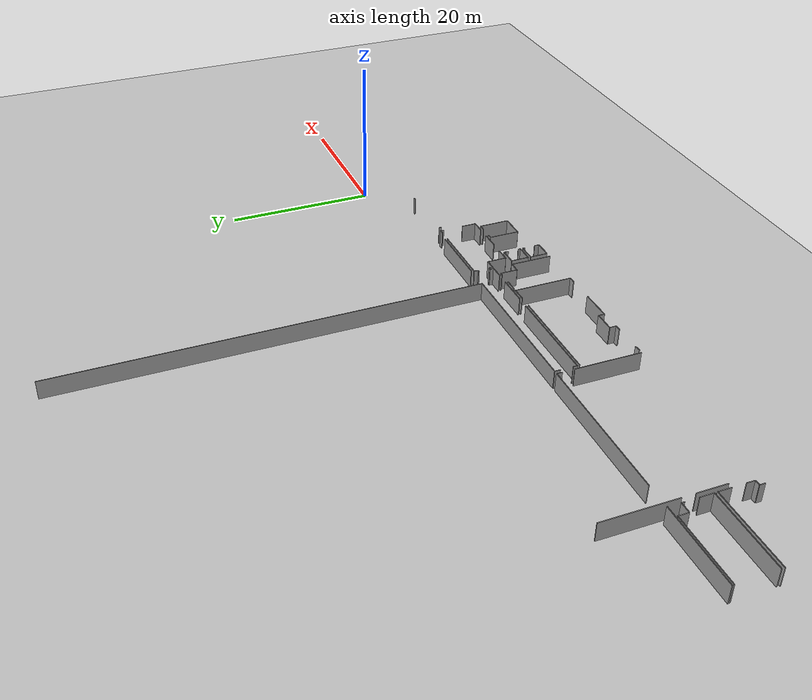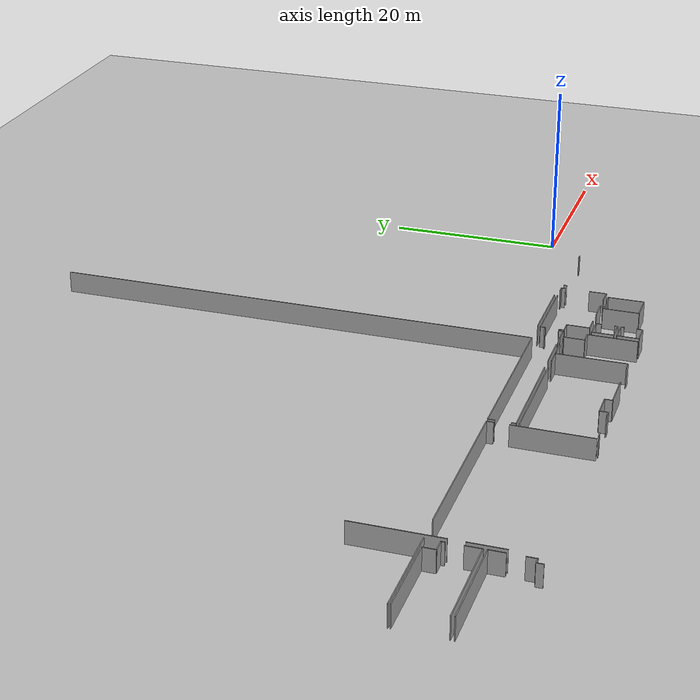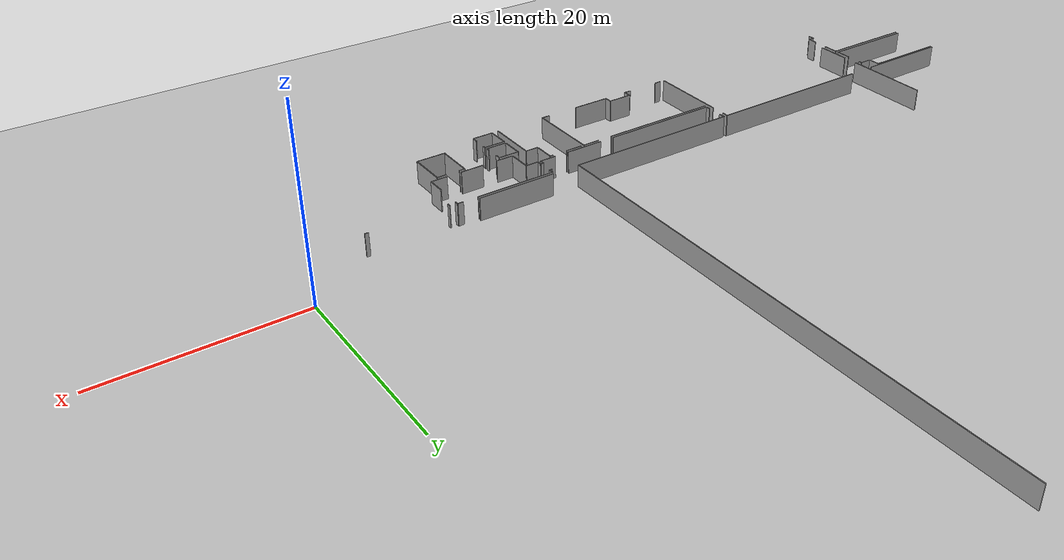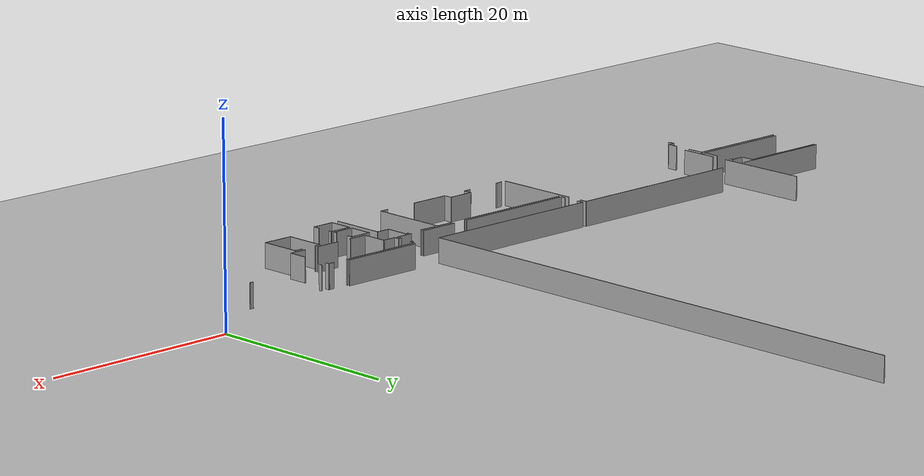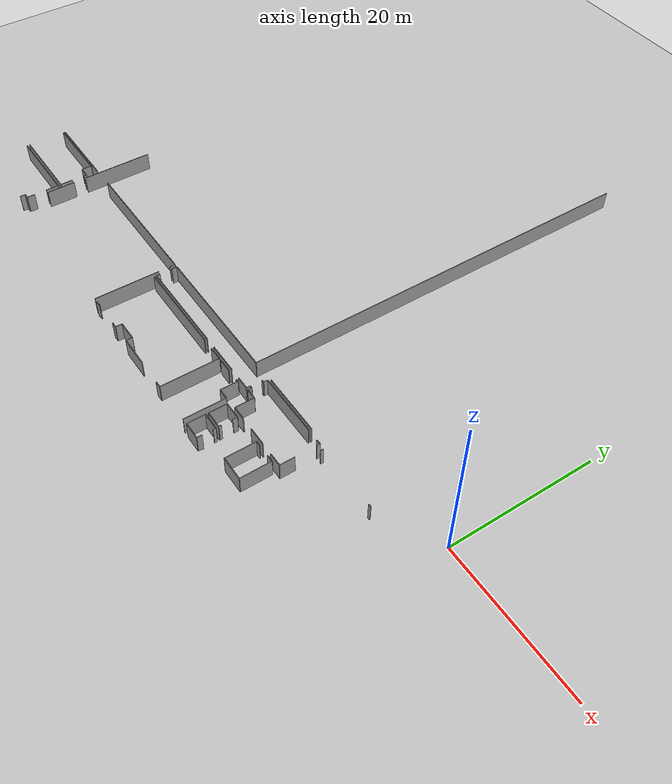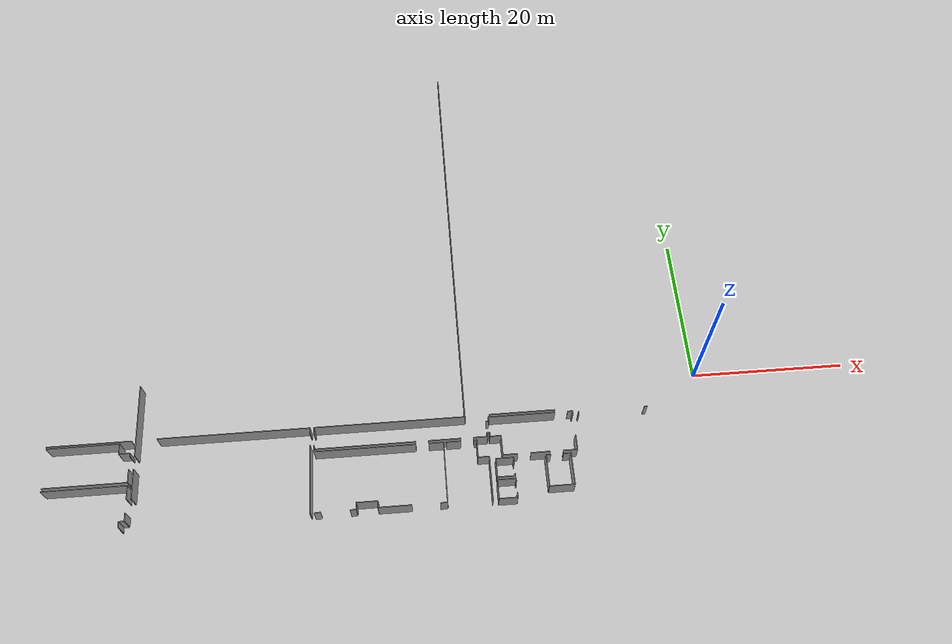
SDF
<sdf version="1.6">
 <world name="default">
  <model name="ground_plane">
   <static>1</static>
   <link name="link">
    <collision name="collision">
     <geometry><plane><normal>0 0 1</normal><size>100 100</size></plane></geometry>
     <surface><friction><ode><mu>100</mu><mu2>50</mu2></ode></friction></surface>
    </collision>
    <visual name="visual">
     <cast_shadows>0</cast_shadows>
     <geometry><plane><normal>0 0 1</normal><size>100 100</size></plane></geometry>
     <material>
      <script><uri>file://media/materials/scripts/gazebo.material</uri><name>Gazebo/Grey</name></script>
     </material>
    </visual>
   </link>
  </model>
  <model name="0510045905_A_40_1_103">
   <static>1</static>
   <link name="Wall_4">
    <collision name="Wall_4_Collision">
     <geometry><box><size>3.87378412847 0.1 2.5</size></box></geometry>
     <pose>1.93689206424 0 1.25 0 0 0</pose>
    </collision>
    <visual name="Wall_4_Visual">
     <pose>1.93689206424 0 1.25 0 0 0</pose>
     <geometry><box><size>3.87378412847 0.1 2.5</size></box></geometry>
     <material>
      <script><uri>file://media/materials/scripts/gazebo.material</uri><name>Gazebo/Grey</name></script>
      <ambient>1 1 1 1</ambient>
     </material>
    </visual>
    <pose>11.2497858543 -74.5343680006 0 0 0 1.57079632679</pose>
   </link>
   <link name="Wall_5">
    <collision name="Wall_5_Collision">
     <geometry><box><size>9.61199977158 0.1 2.5</size></box></geometry>
     <pose>4.80599988579 0 1.25 0 0 0</pose>
    </collision>
    <visual name="Wall_5_Visual">
     <pose>4.80599988579 0 1.25 0 0 0</pose>
     <geometry><box><size>9.61199977158 0.1 2.5</size></box></geometry>
     <material>
      <script><uri>file://media/materials/scripts/gazebo.material</uri><name>Gazebo/Grey</name></script>
      <ambient>1 1 1 1</ambient>
     </material>
    </visual>
    <pose>11.2497858543 -68.9687379047 0 0 0 1.57079632679</pose>
   </link>
   <link name="Wall_16">
    <collision name="Wall_16_Collision">
     <geometry><box><size>19.350139274 0.1 2.5</size></box></geometry>
     <pose>9.675069637 0 1.25 0 0 0</pose>
    </collision>
    <visual name="Wall_16_Visual">
     <pose>9.675069637 0 1.25 0 0 0</pose>
     <geometry><box><size>19.350139274 0.1 2.5</size></box></geometry>
     <material>
      <script><uri>file://media/materials/scripts/gazebo.material</uri><name>Gazebo/Grey</name></script>
      <ambient>1 1 1 1</ambient>
     </material>
    </visual>
    <pose>13.881207845 -66.8675088672 0 0 0 0.0</pose>
   </link>
   <link name="Wall_17">
    <collision name="Wall_17_Collision">
     <geometry><box><size>0.743894469014 0.1 2.5</size></box></geometry>
     <pose>0.371947234507 0 1.25 0 0 0</pose>
    </collision>
    <visual name="Wall_17_Visual">
     <pose>0.371947234507 0 1.25 0 0 0</pose>
     <geometry><box><size>0.743894469014 0.1 2.5</size></box></geometry>
     <material>
      <script><uri>file://media/materials/scripts/gazebo.material</uri><name>Gazebo/Grey</name></script>
      <ambient>1 1 1 1</ambient>
     </material>
    </visual>
    <pose>33.231347119 -66.8675088672 0 0 0 -1.57079632679</pose>
   </link>
   <link name="Wall_18">
    <collision name="Wall_18_Collision">
     <geometry><box><size>8.82354534993 0.1 2.5</size></box></geometry>
     <pose>4.41177267496 0 1.25 0 0 0</pose>
    </collision>
    <visual name="Wall_18_Visual">
     <pose>4.41177267496 0 1.25 0 0 0</pose>
     <geometry><box><size>8.82354534993 0.1 2.5</size></box></geometry>
     <material>
      <script><uri>file://media/materials/scripts/gazebo.material</uri><name>Gazebo/Grey</name></script>
      <ambient>1 1 1 1</ambient>
     </material>
    </visual>
    <pose>33.231347119 -69.2070582413 0 0 0 -1.57577255496</pose>
   </link>
   <link name="Wall_44">
    <collision name="Wall_44_Collision">
     <geometry><box><size>10.7010653351 0.1 2.5</size></box></geometry>
     <pose>5.35053266753 0 1.25 0 0 0</pose>
    </collision>
    <visual name="Wall_44_Visual">
     <pose>5.35053266753 0 1.25 0 0 0</pose>
     <geometry><box><size>10.7010653351 0.1 2.5</size></box></geometry>
     <material>
      <script><uri>file://media/materials/scripts/gazebo.material</uri><name>Gazebo/Grey</name></script>
      <ambient>1 1 1 1</ambient>
     </material>
    </visual>
    <pose>10.7312678058 -66.9271524019 0 0 0 3.14159265359</pose>
   </link>
   <link name="Wall_49">
    <collision name="Wall_49_Collision">
     <geometry><box><size>10.6028438545 0.1 2.5</size></box></geometry>
     <pose>5.30142192725 0 1.25 0 0 0</pose>
    </collision>
    <visual name="Wall_49_Visual">
     <pose>5.30142192725 0 1.25 0 0 0</pose>
     <geometry><box><size>10.6028438545 0.1 2.5</size></box></geometry>
     <material>
      <script><uri>file://media/materials/scripts/gazebo.material</uri><name>Gazebo/Grey</name></script>
      <ambient>1 1 1 1</ambient>
     </material>
    </visual>
    <pose>10.6515738914 -72.3854241353 0 0 0 3.14159265359</pose>
   </link>
   <link name="Wall_50">
    <collision name="Wall_50_Collision">
     <geometry><box><size>9.1950026332 0.1 2.5</size></box></geometry>
     <pose>4.5975013166 0 1.25 0 0 0</pose>
    </collision>
    <visual name="Wall_50_Visual">
     <pose>4.5975013166 0 1.25 0 0 0</pose>
     <geometry><box><size>9.1950026332 0.1 2.5</size></box></geometry>
     <material>
      <script><uri>file://media/materials/scripts/gazebo.material</uri><name>Gazebo/Grey</name></script>
      <ambient>1 1 1 1</ambient>
     </material>
    </visual>
    <pose>0.0487300368648 -67.1741020158 0 0 0 0.0</pose>
   </link>
   <link name="Wall_51">
    <collision name="Wall_51_Collision">
     <geometry><box><size>1.36063399808 0.1 2.5</size></box></geometry>
     <pose>0.680316999042 0 1.25 0 0 0</pose>
    </collision>
    <visual name="Wall_51_Visual">
     <pose>0.680316999042 0 1.25 0 0 0</pose>
     <geometry><box><size>1.36063399808 0.1 2.5</size></box></geometry>
     <material>
      <script><uri>file://media/materials/scripts/gazebo.material</uri><name>Gazebo/Grey</name></script>
      <ambient>1 1 1 1</ambient>
     </material>
    </visual>
    <pose>9.24373267006 -67.1741020158 0 0 0 -1.57079632679</pose>
   </link>
   <link name="Wall_52">
    <collision name="Wall_52_Collision">
     <geometry><box><size>1.40454179172 0.1 2.5</size></box></geometry>
     <pose>0.702270895859 0 1.25 0 0 0</pose>
    </collision>
    <visual name="Wall_52_Visual">
     <pose>0.702270895859 0 1.25 0 0 0</pose>
     <geometry><box><size>1.40454179172 0.1 2.5</size></box></geometry>
     <material>
      <script><uri>file://media/materials/scripts/gazebo.material</uri><name>Gazebo/Grey</name></script>
      <ambient>1 1 1 1</ambient>
     </material>
    </visual>
    <pose>9.24373267006 -68.5347360139 0 0 0 0.0</pose>
   </link>
   <link name="Wall_53">
    <collision name="Wall_53_Collision">
     <geometry><box><size>0.394916340425 0.1 2.5</size></box></geometry>
     <pose>0.197458170212 0 1.25 0 0 0</pose>
    </collision>
    <visual name="Wall_53_Visual">
     <pose>0.197458170212 0 1.25 0 0 0</pose>
     <geometry><box><size>0.394916340425 0.1 2.5</size></box></geometry>
     <material>
      <script><uri>file://media/materials/scripts/gazebo.material</uri><name>Gazebo/Grey</name></script>
      <ambient>1 1 1 1</ambient>
     </material>
    </visual>
    <pose>10.6482744618 -68.5347360139 0 0 0 -1.57079632679</pose>
   </link>
   <link name="Wall_54">
    <collision name="Wall_54_Collision">
     <geometry><box><size>1.72484341891 0.1 2.5</size></box></geometry>
     <pose>0.862421709456 0 1.25 0 0 0</pose>
    </collision>
    <visual name="Wall_54_Visual">
     <pose>0.862421709456 0 1.25 0 0 0</pose>
     <geometry><box><size>1.72484341891 0.1 2.5</size></box></geometry>
     <material>
      <script><uri>file://media/materials/scripts/gazebo.material</uri><name>Gazebo/Grey</name></script>
      <ambient>1 1 1 1</ambient>
     </material>
    </visual>
    <pose>10.6482744618 -70.6605838721 0 0 0 -1.56888343919</pose>
   </link>
   <link name="Wall_56">
    <collision name="Wall_56_Collision">
     <geometry><box><size>10.6373609639 0.1 2.5</size></box></geometry>
     <pose>5.31868048197 0 1.25 0 0 0</pose>
    </collision>
    <visual name="Wall_56_Visual">
     <pose>5.31868048197 0 1.25 0 0 0</pose>
     <geometry><box><size>10.6373609639 0.1 2.5</size></box></geometry>
     <material>
      <script><uri>file://media/materials/scripts/gazebo.material</uri><name>Gazebo/Grey</name></script>
      <ambient>1 1 1 1</ambient>
     </material>
    </visual>
    <pose>0.0256340298091 -72.780594278 0 0 0 0.0</pose>
   </link>
   <link name="Wall_57">
    <collision name="Wall_57_Collision">
     <geometry><box><size>1.72864729732 0.1 2.5</size></box></geometry>
     <pose>0.864323648662 0 1.25 0 0 0</pose>
    </collision>
    <visual name="Wall_57_Visual">
     <pose>0.864323648662 0 1.25 0 0 0</pose>
     <geometry><box><size>1.72864729732 0.1 2.5</size></box></geometry>
     <material>
      <script><uri>file://media/materials/scripts/gazebo.material</uri><name>Gazebo/Grey</name></script>
      <ambient>1 1 1 1</ambient>
     </material>
    </visual>
    <pose>10.6629949938 -72.780594278 0 0 0 -1.57079632679</pose>
   </link>
   <link name="Wall_58">
    <collision name="Wall_58_Collision">
     <geometry><box><size>1.07383742695 0.1 2.5</size></box></geometry>
     <pose>0.536918713476 0 1.25 0 0 0</pose>
    </collision>
    <visual name="Wall_58_Visual">
     <pose>0.536918713476 0 1.25 0 0 0</pose>
     <geometry><box><size>1.07383742695 0.1 2.5</size></box></geometry>
     <material>
      <script><uri>file://media/materials/scripts/gazebo.material</uri><name>Gazebo/Grey</name></script>
      <ambient>1 1 1 1</ambient>
     </material>
    </visual>
    <pose>10.6629949938 -76.2310362112 0 0 0 -1.57079632679</pose>
   </link>
   <link name="Wall_59">
    <collision name="Wall_59_Collision">
     <geometry><box><size>0.693387816222 0.1 2.5</size></box></geometry>
     <pose>0.346693908111 0 1.25 0 0 0</pose>
    </collision>
    <visual name="Wall_59_Visual">
     <pose>0.346693908111 0 1.25 0 0 0</pose>
     <geometry><box><size>0.693387816222 0.1 2.5</size></box></geometry>
     <material>
      <script><uri>file://media/materials/scripts/gazebo.material</uri><name>Gazebo/Grey</name></script>
      <ambient>1 1 1 1</ambient>
     </material>
    </visual>
    <pose>10.6629949938 -77.3048736382 0 0 0 3.14159265359</pose>
   </link>
   <link name="Wall_60">
    <collision name="Wall_60_Collision">
     <geometry><box><size>0.72562070519 0.1 2.5</size></box></geometry>
     <pose>0.362810352595 0 1.25 0 0 0</pose>
    </collision>
    <visual name="Wall_60_Visual">
     <pose>0.362810352595 0 1.25 0 0 0</pose>
     <geometry><box><size>0.72562070519 0.1 2.5</size></box></geometry>
     <material>
      <script><uri>file://media/materials/scripts/gazebo.material</uri><name>Gazebo/Grey</name></script>
      <ambient>1 1 1 1</ambient>
     </material>
    </visual>
    <pose>9.96960717753 -77.3048736382 0 0 0 -1.57079632679</pose>
   </link>
   <link name="Wall_61">
    <collision name="Wall_61_Collision">
     <geometry><box><size>0.524609303122 0.1 2.5</size></box></geometry>
     <pose>0.262304651561 0 1.25 0 0 0</pose>
    </collision>
    <visual name="Wall_61_Visual">
     <pose>0.262304651561 0 1.25 0 0 0</pose>
     <geometry><box><size>0.524609303122 0.1 2.5</size></box></geometry>
     <material>
      <script><uri>file://media/materials/scripts/gazebo.material</uri><name>Gazebo/Grey</name></script>
      <ambient>1 1 1 1</ambient>
     </material>
    </visual>
    <pose>33.6985971079 -69.7935952996 0 0 0 1.57079632679</pose>
   </link>
   <link name="Wall_62">
    <collision name="Wall_62_Collision">
     <geometry><box><size>0.734249982551 0.1 2.5</size></box></geometry>
     <pose>0.367124991276 0 1.25 0 0 0</pose>
    </collision>
    <visual name="Wall_62_Visual">
     <pose>0.367124991276 0 1.25 0 0 0</pose>
     <geometry><box><size>0.734249982551 0.1 2.5</size></box></geometry>
     <material>
      <script><uri>file://media/materials/scripts/gazebo.material</uri><name>Gazebo/Grey</name></script>
      <ambient>1 1 1 1</ambient>
     </material>
    </visual>
    <pose>33.6985971079 -67.6004898384 0 0 0 1.57079632679</pose>
   </link>
   <link name="Wall_63">
    <collision name="Wall_63_Collision">
     <geometry><box><size>19.3156221646 0.1 2.5</size></box></geometry>
     <pose>9.65781108228 0 1.25 0 0 0</pose>
    </collision>
    <visual name="Wall_63_Visual">
     <pose>9.65781108228 0 1.25 0 0 0</pose>
     <geometry><box><size>19.3156221646 0.1 2.5</size></box></geometry>
     <material>
      <script><uri>file://media/materials/scripts/gazebo.material</uri><name>Gazebo/Grey</name></script>
      <ambient>1 1 1 1</ambient>
     </material>
    </visual>
    <pose>33.6985971079 -66.8662398558 0 0 0 0.0</pose>
   </link>
   <link name="Wall_64">
    <collision name="Wall_64_Collision">
     <geometry><box><size>55.6601079929 0.1 2.5</size></box></geometry>
     <pose>27.8300539964 0 1.25 0 0 0</pose>
    </collision>
    <visual name="Wall_64_Visual">
     <pose>27.8300539964 0 1.25 0 0 0</pose>
     <geometry><box><size>55.6601079929 0.1 2.5</size></box></geometry>
     <material>
      <script><uri>file://media/materials/scripts/gazebo.material</uri><name>Gazebo/Grey</name></script>
      <ambient>1 1 1 1</ambient>
     </material>
    </visual>
    <pose>53.0142192725 -66.8662398558 0 0 0 1.57079632679</pose>
   </link>
   <link name="Wall_72">
    <collision name="Wall_72_Collision">
     <geometry><box><size>0.333749992069 0.1 2.5</size></box></geometry>
     <pose>0.166874996034 0 1.25 0 0 0</pose>
    </collision>
    <visual name="Wall_72_Visual">
     <pose>0.166874996034 0 1.25 0 0 0</pose>
     <geometry><box><size>0.333749992069 0.1 2.5</size></box></geometry>
     <material>
      <script><uri>file://media/materials/scripts/gazebo.material</uri><name>Gazebo/Grey</name></script>
      <ambient>1 1 1 1</ambient>
     </material>
    </visual>
    <pose>55.650971111 -67.683990787 0 0 0 0.0</pose>
   </link>
   <link name="Wall_73">
    <collision name="Wall_73_Collision">
     <geometry><box><size>0.551512344308 0.1 2.5</size></box></geometry>
     <pose>0.275756172154 0 1.25 0 0 0</pose>
    </collision>
    <visual name="Wall_73_Visual">
     <pose>0.275756172154 0 1.25 0 0 0</pose>
     <geometry><box><size>0.551512344308 0.1 2.5</size></box></geometry>
     <material>
      <script><uri>file://media/materials/scripts/gazebo.material</uri><name>Gazebo/Grey</name></script>
      <ambient>1 1 1 1</ambient>
     </material>
    </visual>
    <pose>55.984721103 -67.683990787 0 0 0 1.57079632679</pose>
   </link>
   <link name="Wall_74">
    <collision name="Wall_74_Collision">
     <geometry><box><size>8.61963287501 0.1 2.5</size></box></geometry>
     <pose>4.3098164375 0 1.25 0 0 0</pose>
    </collision>
    <visual name="Wall_74_Visual">
     <pose>4.3098164375 0 1.25 0 0 0</pose>
     <geometry><box><size>8.61963287501 0.1 2.5</size></box></geometry>
     <material>
      <script><uri>file://media/materials/scripts/gazebo.material</uri><name>Gazebo/Grey</name></script>
      <ambient>1 1 1 1</ambient>
     </material>
    </visual>
    <pose>55.984721103 -67.1324784427 0 0 0 0.0</pose>
   </link>
   <link name="Wall_75">
    <collision name="Wall_75_Collision">
     <geometry><box><size>0.618262342722 0.1 2.5</size></box></geometry>
     <pose>0.309131171361 0 1.25 0 0 0</pose>
    </collision>
    <visual name="Wall_75_Visual">
     <pose>0.309131171361 0 1.25 0 0 0</pose>
     <geometry><box><size>0.618262342722 0.1 2.5</size></box></geometry>
     <material>
      <script><uri>file://media/materials/scripts/gazebo.material</uri><name>Gazebo/Grey</name></script>
      <ambient>1 1 1 1</ambient>
     </material>
    </visual>
    <pose>66.2347797948 -67.1324784427 0 0 0 0.0</pose>
   </link>
   <link name="Wall_76">
    <collision name="Wall_76_Collision">
     <geometry><box><size>0.461920141114 0.1 2.5</size></box></geometry>
     <pose>0.230960070557 0 1.25 0 0 0</pose>
    </collision>
    <visual name="Wall_76_Visual">
     <pose>0.230960070557 0 1.25 0 0 0</pose>
     <geometry><box><size>0.461920141114 0.1 2.5</size></box></geometry>
     <material>
      <script><uri>file://media/materials/scripts/gazebo.material</uri><name>Gazebo/Grey</name></script>
      <ambient>1 1 1 1</ambient>
     </material>
    </visual>
    <pose>66.8530421375 -67.1324784427 0 0 0 -1.57079632679</pose>
   </link>
   <link name="Wall_77">
    <collision name="Wall_77_Collision">
     <geometry><box><size>1.9748355044 0.1 2.5</size></box></geometry>
     <pose>0.9874177522 0 1.25 0 0 0</pose>
    </collision>
    <visual name="Wall_77_Visual">
     <pose>0.9874177522 0 1.25 0 0 0</pose>
     <geometry><box><size>1.9748355044 0.1 2.5</size></box></geometry>
     <material>
      <script><uri>file://media/materials/scripts/gazebo.material</uri><name>Gazebo/Grey</name></script>
      <ambient>1 1 1 1</ambient>
     </material>
    </visual>
    <pose>66.8530421375 -70.3859698102 0 0 0 -1.57079632679</pose>
   </link>
   <link name="Wall_78">
    <collision name="Wall_78_Collision">
     <geometry><box><size>1.77610832281 0.1 2.5</size></box></geometry>
     <pose>0.888054161406 0 1.25 0 0 0</pose>
    </collision>
    <visual name="Wall_78_Visual">
     <pose>0.888054161406 0 1.25 0 0 0</pose>
     <geometry><box><size>1.77610832281 0.1 2.5</size></box></geometry>
     <material>
      <script><uri>file://media/materials/scripts/gazebo.material</uri><name>Gazebo/Grey</name></script>
      <ambient>1 1 1 1</ambient>
     </material>
    </visual>
    <pose>66.8530421375 -72.3608053146 0 0 0 3.14159265359</pose>
   </link>
   <link name="Wall_79">
    <collision name="Wall_79_Collision">
     <geometry><box><size>2.48573948465 0.1 2.5</size></box></geometry>
     <pose>1.24286974233 0 1.25 0 0 0</pose>
    </collision>
    <visual name="Wall_79_Visual">
     <pose>1.24286974233 0 1.25 0 0 0</pose>
     <geometry><box><size>2.48573948465 0.1 2.5</size></box></geometry>
     <material>
      <script><uri>file://media/materials/scripts/gazebo.material</uri><name>Gazebo/Grey</name></script>
      <ambient>1 1 1 1</ambient>
     </material>
    </visual>
    <pose>63.4333102796 -72.3608053146 0 0 0 3.14159265359</pose>
   </link>
   <link name="Wall_80">
    <collision name="Wall_80_Collision">
     <geometry><box><size>1.89996383318 0.1 2.5</size></box></geometry>
     <pose>0.949981916588 0 1.25 0 0 0</pose>
    </collision>
    <visual name="Wall_80_Visual">
     <pose>0.949981916588 0 1.25 0 0 0</pose>
     <geometry><box><size>1.89996383318 0.1 2.5</size></box></geometry>
     <material>
      <script><uri>file://media/materials/scripts/gazebo.material</uri><name>Gazebo/Grey</name></script>
      <ambient>1 1 1 1</ambient>
     </material>
    </visual>
    <pose>59.3006478303 -72.3608053146 0 0 0 3.14159265359</pose>
   </link>
   <link name="Wall_81">
    <collision name="Wall_81_Collision">
     <geometry><box><size>2.58675279024 0.1 2.5</size></box></geometry>
     <pose>1.29337639512 0 1.25 0 0 0</pose>
    </collision>
    <visual name="Wall_81_Visual">
     <pose>1.29337639512 0 1.25 0 0 0</pose>
     <geometry><box><size>2.58675279024 0.1 2.5</size></box></geometry>
     <material>
      <script><uri>file://media/materials/scripts/gazebo.material</uri><name>Gazebo/Grey</name></script>
      <ambient>1 1 1 1</ambient>
     </material>
    </visual>
    <pose>57.4006839971 -72.3608053146 0 0 0 1.57079632679</pose>
   </link>
   <link name="Wall_82">
    <collision name="Wall_82_Collision">
     <geometry><box><size>1.40098855986 0.1 2.5</size></box></geometry>
     <pose>0.700494279931 0 1.25 0 0 0</pose>
    </collision>
    <visual name="Wall_82_Visual">
     <pose>0.700494279931 0 1.25 0 0 0</pose>
     <geometry><box><size>1.40098855986 0.1 2.5</size></box></geometry>
     <material>
      <script><uri>file://media/materials/scripts/gazebo.material</uri><name>Gazebo/Grey</name></script>
      <ambient>1 1 1 1</ambient>
     </material>
    </visual>
    <pose>57.4006839971 -69.7740525244 0 0 0 3.14159265359</pose>
   </link>
   <link name="Wall_83">
    <collision name="Wall_83_Collision">
     <geometry><box><size>0.518264246239 0.1 2.5</size></box></geometry>
     <pose>0.259132123119 0 1.25 0 0 0</pose>
    </collision>
    <visual name="Wall_83_Visual">
     <pose>0.259132123119 0 1.25 0 0 0</pose>
     <geometry><box><size>0.518264246239 0.1 2.5</size></box></geometry>
     <material>
      <script><uri>file://media/materials/scripts/gazebo.material</uri><name>Gazebo/Grey</name></script>
      <ambient>1 1 1 1</ambient>
     </material>
    </visual>
    <pose>55.9996954373 -69.7740525244 0 0 0 1.57079632679</pose>
   </link>
   <link name="Wall_84">
    <collision name="Wall_84_Collision">
     <geometry><box><size>0.329689155663 0.1 2.5</size></box></geometry>
     <pose>0.164844577832 0 1.25 0 0 0</pose>
    </collision>
    <visual name="Wall_84_Visual">
     <pose>0.164844577832 0 1.25 0 0 0</pose>
     <geometry><box><size>0.329689155663 0.1 2.5</size></box></geometry>
     <material>
      <script><uri>file://media/materials/scripts/gazebo.material</uri><name>Gazebo/Grey</name></script>
      <ambient>1 1 1 1</ambient>
     </material>
    </visual>
    <pose>55.9996954373 -69.2557882781 0 0 0 3.14159265359</pose>
   </link>
   <link name="Wall_85">
    <collision name="Wall_85_Collision">
     <geometry><box><size>0.509381166602 0.1 2.5</size></box></geometry>
     <pose>0.254690583301 0 1.25 0 0 0</pose>
    </collision>
    <visual name="Wall_85_Visual">
     <pose>0.254690583301 0 1.25 0 0 0</pose>
     <geometry><box><size>0.509381166602 0.1 2.5</size></box></geometry>
     <material>
      <script><uri>file://media/materials/scripts/gazebo.material</uri><name>Gazebo/Grey</name></script>
      <ambient>1 1 1 1</ambient>
     </material>
    </visual>
    <pose>55.6700062816 -69.2557882781 0 0 0 -1.57079632679</pose>
   </link>
   <link name="Wall_86">
    <collision name="Wall_86_Collision">
     <geometry><box><size>1.78194577514 0.1 2.5</size></box></geometry>
     <pose>0.890972887572 0 1.25 0 0 0</pose>
    </collision>
    <visual name="Wall_86_Visual">
     <pose>0.890972887572 0 1.25 0 0 0</pose>
     <geometry><box><size>1.78194577514 0.1 2.5</size></box></geometry>
     <material>
      <script><uri>file://media/materials/scripts/gazebo.material</uri><name>Gazebo/Grey</name></script>
      <ambient>1 1 1 1</ambient>
     </material>
    </visual>
    <pose>55.6700062816 -69.7651694447 0 0 0 3.14159265359</pose>
   </link>
   <link name="Wall_87">
    <collision name="Wall_87_Collision">
     <geometry><box><size>4.1009371649 0.1 2.5</size></box></geometry>
     <pose>2.05046858245 0 1.25 0 0 0</pose>
    </collision>
    <visual name="Wall_87_Visual">
     <pose>2.05046858245 0 1.25 0 0 0</pose>
     <geometry><box><size>4.1009371649 0.1 2.5</size></box></geometry>
     <material>
      <script><uri>file://media/materials/scripts/gazebo.material</uri><name>Gazebo/Grey</name></script>
      <ambient>1 1 1 1</ambient>
     </material>
    </visual>
    <pose>52.2787002785 -69.7651694447 0 0 0 3.14159265359</pose>
   </link>
   <link name="Wall_88">
    <collision name="Wall_88_Collision">
     <geometry><box><size>12.8639997321 0.1 2.5</size></box></geometry>
     <pose>6.43199986606 0 1.25 0 0 0</pose>
    </collision>
    <visual name="Wall_88_Visual">
     <pose>6.43199986606 0 1.25 0 0 0</pose>
     <geometry><box><size>12.8639997321 0.1 2.5</size></box></geometry>
     <material>
      <script><uri>file://media/materials/scripts/gazebo.material</uri><name>Gazebo/Grey</name></script>
      <ambient>1 1 1 1</ambient>
     </material>
    </visual>
    <pose>46.5625654334 -69.7651694447 0 0 0 -3.13938293044</pose>
   </link>
   <link name="Wall_111">
    <collision name="Wall_111_Collision">
     <geometry><box><size>1.82839159153 0.1 2.5</size></box></geometry>
     <pose>0.914195795765 0 1.25 0 0 0</pose>
    </collision>
    <visual name="Wall_111_Visual">
     <pose>0.914195795765 0 1.25 0 0 0</pose>
     <geometry><box><size>1.82839159153 0.1 2.5</size></box></geometry>
     <material>
      <script><uri>file://media/materials/scripts/gazebo.material</uri><name>Gazebo/Grey</name></script>
      <ambient>1 1 1 1</ambient>
     </material>
    </visual>
    <pose>50.412492148 -70.1179546075 0 0 0 0.0</pose>
   </link>
   <link name="Wall_112">
    <collision name="Wall_112_Collision">
     <geometry><box><size>0.362937253732 0.1 2.5</size></box></geometry>
     <pose>0.181468626866 0 1.25 0 0 0</pose>
    </collision>
    <visual name="Wall_112_Visual">
     <pose>0.181468626866 0 1.25 0 0 0</pose>
     <geometry><box><size>0.362937253732 0.1 2.5</size></box></geometry>
     <material>
      <script><uri>file://media/materials/scripts/gazebo.material</uri><name>Gazebo/Grey</name></script>
      <ambient>1 1 1 1</ambient>
     </material>
    </visual>
    <pose>53.9096336999 -70.1179546075 0 0 0 0.0</pose>
   </link>
   <link name="Wall_113">
    <collision name="Wall_113_Collision">
     <geometry><box><size>2.32355983071 0.1 2.5</size></box></geometry>
     <pose>1.16177991536 0 1.25 0 0 0</pose>
    </collision>
    <visual name="Wall_113_Visual">
     <pose>1.16177991536 0 1.25 0 0 0</pose>
     <geometry><box><size>2.32355983071 0.1 2.5</size></box></geometry>
     <material>
      <script><uri>file://media/materials/scripts/gazebo.material</uri><name>Gazebo/Grey</name></script>
      <ambient>1 1 1 1</ambient>
     </material>
    </visual>
    <pose>54.2725709536 -70.1179546075 0 0 0 -1.57079632679</pose>
   </link>
   <link name="Wall_114">
    <collision name="Wall_114_Collision">
     <geometry><box><size>1.42002373051 0.1 2.5</size></box></geometry>
     <pose>0.710011865256 0 1.25 0 0 0</pose>
    </collision>
    <visual name="Wall_114_Visual">
     <pose>0.710011865256 0 1.25 0 0 0</pose>
     <geometry><box><size>1.42002373051 0.1 2.5</size></box></geometry>
     <material>
      <script><uri>file://media/materials/scripts/gazebo.material</uri><name>Gazebo/Grey</name></script>
      <ambient>1 1 1 1</ambient>
     </material>
    </visual>
    <pose>54.2725709536 -72.4415144382 0 0 0 0.0</pose>
   </link>
   <link name="Wall_115">
    <collision name="Wall_115_Collision">
     <geometry><box><size>5.5743255246 0.1 2.5</size></box></geometry>
     <pose>2.7871627623 0 1.25 0 0 0</pose>
    </collision>
    <visual name="Wall_115_Visual">
     <pose>2.7871627623 0 1.25 0 0 0</pose>
     <geometry><box><size>5.5743255246 0.1 2.5</size></box></geometry>
     <material>
      <script><uri>file://media/materials/scripts/gazebo.material</uri><name>Gazebo/Grey</name></script>
      <ambient>1 1 1 1</ambient>
     </material>
    </visual>
    <pose>55.6925946841 -72.4415144382 0 0 0 -1.57566811815</pose>
   </link>
   <link name="Wall_117">
    <collision name="Wall_117_Collision">
     <geometry><box><size>12.8446793526 0.1 2.5</size></box></geometry>
     <pose>6.42233967628 0 1.25 0 0 0</pose>
    </collision>
    <visual name="Wall_117_Visual">
     <pose>6.42233967628 0 1.25 0 0 0</pose>
     <geometry><box><size>12.8446793526 0.1 2.5</size></box></geometry>
     <material>
      <script><uri>file://media/materials/scripts/gazebo.material</uri><name>Gazebo/Grey</name></script>
      <ambient>1 1 1 1</ambient>
     </material>
    </visual>
    <pose>33.6947900738 -70.1118633529 0 0 0 0.0</pose>
   </link>
   <link name="Wall_118">
    <collision name="Wall_118_Collision">
     <geometry><box><size>1.88067486025 0.1 2.5</size></box></geometry>
     <pose>0.940337430125 0 1.25 0 0 0</pose>
    </collision>
    <visual name="Wall_118_Visual">
     <pose>0.940337430125 0 1.25 0 0 0</pose>
     <geometry><box><size>1.88067486025 0.1 2.5</size></box></geometry>
     <material>
      <script><uri>file://media/materials/scripts/gazebo.material</uri><name>Gazebo/Grey</name></script>
      <ambient>1 1 1 1</ambient>
     </material>
    </visual>
    <pose>48.1889304138 -70.1118633529 0 0 0 0.0</pose>
   </link>
   <link name="Wall_119">
    <collision name="Wall_119_Collision">
     <geometry><box><size>7.85188099211 0.1 2.5</size></box></geometry>
     <pose>3.92594049606 0 1.25 0 0 0</pose>
    </collision>
    <visual name="Wall_119_Visual">
     <pose>3.92594049606 0 1.25 0 0 0</pose>
     <geometry><box><size>7.85188099211 0.1 2.5</size></box></geometry>
     <material>
      <script><uri>file://media/materials/scripts/gazebo.material</uri><name>Gazebo/Grey</name></script>
      <ambient>1 1 1 1</ambient>
     </material>
    </visual>
    <pose>50.069605274 -70.1118633529 0 0 0 -1.57079632679</pose>
   </link>
   <link name="Wall_120">
    <collision name="Wall_120_Collision">
     <geometry><box><size>0.893637811463 0.1 2.5</size></box></geometry>
     <pose>0.446818905731 0 1.25 0 0 0</pose>
    </collision>
    <visual name="Wall_120_Visual">
     <pose>0.446818905731 0 1.25 0 0 0</pose>
     <geometry><box><size>0.893637811463 0.1 2.5</size></box></geometry>
     <material>
      <script><uri>file://media/materials/scripts/gazebo.material</uri><name>Gazebo/Grey</name></script>
      <ambient>1 1 1 1</ambient>
     </material>
    </visual>
    <pose>50.069605274 -77.963744345 0 0 0 3.14159265359</pose>
   </link>
   <link name="Wall_121">
    <collision name="Wall_121_Collision">
     <geometry><box><size>4.172001802 0.1 2.5</size></box></geometry>
     <pose>2.086000901 0 1.25 0 0 0</pose>
    </collision>
    <visual name="Wall_121_Visual">
     <pose>2.086000901 0 1.25 0 0 0</pose>
     <geometry><box><size>4.172001802 0.1 2.5</size></box></geometry>
     <material>
      <script><uri>file://media/materials/scripts/gazebo.material</uri><name>Gazebo/Grey</name></script>
      <ambient>1 1 1 1</ambient>
     </material>
    </visual>
    <pose>45.6882165949 -77.963744345 0 0 0 3.14159265359</pose>
   </link>
   <link name="Wall_122">
    <collision name="Wall_122_Collision">
     <geometry><box><size>0.834501881309 0.1 2.5</size></box></geometry>
     <pose>0.417250940655 0 1.25 0 0 0</pose>
    </collision>
    <visual name="Wall_122_Visual">
     <pose>0.417250940655 0 1.25 0 0 0</pose>
     <geometry><box><size>0.834501881309 0.1 2.5</size></box></geometry>
     <material>
      <script><uri>file://media/materials/scripts/gazebo.material</uri><name>Gazebo/Grey</name></script>
      <ambient>1 1 1 1</ambient>
     </material>
    </visual>
    <pose>41.5162147929 -77.963744345 0 0 0 1.57079632679</pose>
   </link>
   <link name="Wall_123">
    <collision name="Wall_123_Collision">
     <geometry><box><size>2.66999993655 0.1 2.5</size></box></geometry>
     <pose>1.33499996827 0 1.25 0 0 0</pose>
    </collision>
    <visual name="Wall_123_Visual">
     <pose>1.33499996827 0 1.25 0 0 0</pose>
     <geometry><box><size>2.66999993655 0.1 2.5</size></box></geometry>
     <material>
      <script><uri>file://media/materials/scripts/gazebo.material</uri><name>Gazebo/Grey</name></script>
      <ambient>1 1 1 1</ambient>
     </material>
    </visual>
    <pose>41.5162147929 -77.1292424637 0 0 0 3.14159265359</pose>
   </link>
   <link name="Wall_124">
    <collision name="Wall_124_Collision">
     <geometry><box><size>0.884500929551 0.1 2.5</size></box></geometry>
     <pose>0.442250464775 0 1.25 0 0 0</pose>
    </collision>
    <visual name="Wall_124_Visual">
     <pose>0.442250464775 0 1.25 0 0 0</pose>
     <geometry><box><size>0.884500929551 0.1 2.5</size></box></geometry>
     <material>
      <script><uri>file://media/materials/scripts/gazebo.material</uri><name>Gazebo/Grey</name></script>
      <ambient>1 1 1 1</ambient>
     </material>
    </visual>
    <pose>38.8462148563 -77.1292424637 0 0 0 -1.57079632679</pose>
   </link>
   <link name="Wall_125">
    <collision name="Wall_125_Collision">
     <geometry><box><size>0.767751882896 0.1 2.5</size></box></geometry>
     <pose>0.383875941448 0 1.25 0 0 0</pose>
    </collision>
    <visual name="Wall_125_Visual">
     <pose>0.383875941448 0 1.25 0 0 0</pose>
     <geometry><box><size>0.767751882896 0.1 2.5</size></box></geometry>
     <material>
      <script><uri>file://media/materials/scripts/gazebo.material</uri><name>Gazebo/Grey</name></script>
      <ambient>1 1 1 1</ambient>
     </material>
    </visual>
    <pose>38.8462148563 -78.0137433932 0 0 0 3.14159265359</pose>
   </link>
   <link name="Wall_126">
    <collision name="Wall_126_Collision">
     <geometry><box><size>0.798592196723 0.1 2.5</size></box></geometry>
     <pose>0.399296098362 0 1.25 0 0 0</pose>
    </collision>
    <visual name="Wall_126_Visual">
     <pose>0.399296098362 0 1.25 0 0 0</pose>
     <geometry><box><size>0.798592196723 0.1 2.5</size></box></geometry>
     <material>
      <script><uri>file://media/materials/scripts/gazebo.material</uri><name>Gazebo/Grey</name></script>
      <ambient>1 1 1 1</ambient>
     </material>
    </visual>
    <pose>34.4907140093 -78.0137433932 0 0 0 -3.05982385083</pose>
   </link>
   <link name="Wall_132">
    <collision name="Wall_132_Collision">
     <geometry><box><size>8.46455968478 0.1 2.5</size></box></geometry>
     <pose>4.23227984239 0 1.25 0 0 0</pose>
    </collision>
    <visual name="Wall_132_Visual">
     <pose>4.23227984239 0 1.25 0 0 0</pose>
     <geometry><box><size>8.46455968478 0.1 2.5</size></box></geometry>
     <material>
      <script><uri>file://media/materials/scripts/gazebo.material</uri><name>Gazebo/Grey</name></script>
      <ambient>1 1 1 1</ambient>
     </material>
    </visual>
    <pose>56.1588294639 -66.7992360552 0 0 0 0.0</pose>
   </link>
   <link name="Wall_134">
    <collision name="Wall_134_Collision">
     <geometry><box><size>2.30883929874 0.1 2.5</size></box></geometry>
     <pose>1.15441964937 0 1.25 0 0 0</pose>
    </collision>
    <visual name="Wall_134_Visual">
     <pose>1.15441964937 0 1.25 0 0 0</pose>
     <geometry><box><size>2.30883929874 0.1 2.5</size></box></geometry>
     <material>
      <script><uri>file://media/materials/scripts/gazebo.material</uri><name>Gazebo/Grey</name></script>
      <ambient>1 1 1 1</ambient>
     </material>
    </visual>
    <pose>58.7351763609 -77.9896321771 0 0 0 3.14159265359</pose>
   </link>
   <link name="Wall_135">
    <collision name="Wall_135_Collision">
     <geometry><box><size>2.4235579272 0.1 2.5</size></box></geometry>
     <pose>1.2117789636 0 1.25 0 0 0</pose>
    </collision>
    <visual name="Wall_135_Visual">
     <pose>1.2117789636 0 1.25 0 0 0</pose>
     <geometry><box><size>2.4235579272 0.1 2.5</size></box></geometry>
     <material>
      <script><uri>file://media/materials/scripts/gazebo.material</uri><name>Gazebo/Grey</name></script>
      <ambient>1 1 1 1</ambient>
     </material>
    </visual>
    <pose>56.4263370621 -77.9896321771 0 0 0 1.57079632679</pose>
   </link>
   <link name="Wall_136">
    <collision name="Wall_136_Collision">
     <geometry><box><size>2.32787446939 0.1 2.5</size></box></geometry>
     <pose>1.1639372347 0 1.25 0 0 0</pose>
    </collision>
    <visual name="Wall_136_Visual">
     <pose>1.1639372347 0 1.25 0 0 0</pose>
     <geometry><box><size>2.32787446939 0.1 2.5</size></box></geometry>
     <material>
      <script><uri>file://media/materials/scripts/gazebo.material</uri><name>Gazebo/Grey</name></script>
      <ambient>1 1 1 1</ambient>
     </material>
    </visual>
    <pose>56.4263370621 -75.5660742499 0 0 0 0.0</pose>
   </link>
   <link name="Wall_137">
    <collision name="Wall_137_Collision">
     <geometry><box><size>0.37232793792 0.1 2.5</size></box></geometry>
     <pose>0.18616396896 0 1.25 0 0 0</pose>
    </collision>
    <visual name="Wall_137_Visual">
     <pose>0.18616396896 0 1.25 0 0 0</pose>
     <geometry><box><size>0.37232793792 0.1 2.5</size></box></geometry>
     <material>
      <script><uri>file://media/materials/scripts/gazebo.material</uri><name>Gazebo/Grey</name></script>
      <ambient>1 1 1 1</ambient>
     </material>
    </visual>
    <pose>58.7542115315 -75.5660742499 0 0 0 -1.57079632679</pose>
   </link>
   <link name="Wall_138">
    <collision name="Wall_138_Collision">
     <geometry><box><size>0.668025042188 0.1 2.5</size></box></geometry>
     <pose>0.334012521094 0 1.25 0 0 0</pose>
    </collision>
    <visual name="Wall_138_Visual">
     <pose>0.334012521094 0 1.25 0 0 0</pose>
     <geometry><box><size>0.668025042188 0.1 2.5</size></box></geometry>
     <material>
      <script><uri>file://media/materials/scripts/gazebo.material</uri><name>Gazebo/Grey</name></script>
      <ambient>1 1 1 1</ambient>
     </material>
    </visual>
    <pose>58.7542115315 -77.3218783906 0 0 0 -1.59929488047</pose>
   </link>
   <link name="Wall_139">
    <collision name="Wall_139_Collision">
     <geometry><box><size>3.17709688267 0.1 2.5</size></box></geometry>
     <pose>1.58854844134 0 1.25 0 0 0</pose>
    </collision>
    <visual name="Wall_139_Visual">
     <pose>1.58854844134 0 1.25 0 0 0</pose>
     <geometry><box><size>3.17709688267 0.1 2.5</size></box></geometry>
     <material>
      <script><uri>file://media/materials/scripts/gazebo.material</uri><name>Gazebo/Grey</name></script>
      <ambient>1 1 1 1</ambient>
     </material>
    </visual>
    <pose>65.9865611695 -76.8637652837 0 0 0 3.14159265359</pose>
   </link>
   <link name="Wall_140">
    <collision name="Wall_140_Collision">
     <geometry><box><size>4.10271378083 0.1 2.5</size></box></geometry>
     <pose>2.05135689041 0 1.25 0 0 0</pose>
    </collision>
    <visual name="Wall_140_Visual">
     <pose>2.05135689041 0 1.25 0 0 0</pose>
     <geometry><box><size>4.10271378083 0.1 2.5</size></box></geometry>
     <material>
      <script><uri>file://media/materials/scripts/gazebo.material</uri><name>Gazebo/Grey</name></script>
      <ambient>1 1 1 1</ambient>
     </material>
    </visual>
    <pose>62.8094642868 -76.8637652837 0 0 0 1.57079632679</pose>
   </link>
   <link name="Wall_141">
    <collision name="Wall_141_Collision">
     <geometry><box><size>0.620038958649 0.1 2.5</size></box></geometry>
     <pose>0.310019479325 0 1.25 0 0 0</pose>
    </collision>
    <visual name="Wall_141_Visual">
     <pose>0.310019479325 0 1.25 0 0 0</pose>
     <geometry><box><size>0.620038958649 0.1 2.5</size></box></geometry>
     <material>
      <script><uri>file://media/materials/scripts/gazebo.material</uri><name>Gazebo/Grey</name></script>
      <ambient>1 1 1 1</ambient>
     </material>
    </visual>
    <pose>62.8094642868 -72.7610515028 0 0 0 0.0</pose>
   </link>
   <link name="Wall_142">
    <collision name="Wall_142_Collision">
     <geometry><box><size>0.908612145708 0.1 2.5</size></box></geometry>
     <pose>0.454306072854 0 1.25 0 0 0</pose>
    </collision>
    <visual name="Wall_142_Visual">
     <pose>0.454306072854 0 1.25 0 0 0</pose>
     <geometry><box><size>0.908612145708 0.1 2.5</size></box></geometry>
     <material>
      <script><uri>file://media/materials/scripts/gazebo.material</uri><name>Gazebo/Grey</name></script>
      <ambient>1 1 1 1</ambient>
     </material>
    </visual>
    <pose>65.0485079599 -72.7610515028 0 0 0 0.0</pose>
   </link>
   <link name="Wall_143">
    <collision name="Wall_143_Collision">
     <geometry><box><size>4.10281941397 0.1 2.5</size></box></geometry>
     <pose>2.05140970699 0 1.25 0 0 0</pose>
    </collision>
    <visual name="Wall_143_Visual">
     <pose>2.05140970699 0 1.25 0 0 0</pose>
     <geometry><box><size>4.10281941397 0.1 2.5</size></box></geometry>
     <material>
      <script><uri>file://media/materials/scripts/gazebo.material</uri><name>Gazebo/Grey</name></script>
      <ambient>1 1 1 1</ambient>
     </material>
    </visual>
    <pose>65.9571201056 -72.7610515028 0 0 0 -1.56362045244</pose>
   </link>
   <link name="Wall_144">
    <collision name="Wall_144_Collision">
     <geometry><box><size>2.27076895744 0.1 2.5</size></box></geometry>
     <pose>1.13538447872 0 1.25 0 0 0</pose>
    </collision>
    <visual name="Wall_144_Visual">
     <pose>1.13538447872 0 1.25 0 0 0</pose>
     <geometry><box><size>2.27076895744 0.1 2.5</size></box></geometry>
     <material>
      <script><uri>file://media/materials/scripts/gazebo.material</uri><name>Gazebo/Grey</name></script>
      <ambient>1 1 1 1</ambient>
     </material>
    </visual>
    <pose>58.7351763609 -75.2130352849 0 0 0 3.14159265359</pose>
   </link>
   <link name="Wall_145">
    <collision name="Wall_145_Collision">
     <geometry><box><size>2.42330412492 0.1 2.5</size></box></geometry>
     <pose>1.21165206246 0 1.25 0 0 0</pose>
    </collision>
    <visual name="Wall_145_Visual">
     <pose>1.21165206246 0 1.25 0 0 0</pose>
     <geometry><box><size>2.42330412492 0.1 2.5</size></box></geometry>
     <material>
      <script><uri>file://media/materials/scripts/gazebo.material</uri><name>Gazebo/Grey</name></script>
      <ambient>1 1 1 1</ambient>
     </material>
    </visual>
    <pose>56.4644074034 -75.2130352849 0 0 0 1.57079632679</pose>
   </link>
   <link name="Wall_146">
    <collision name="Wall_146_Collision">
     <geometry><box><size>2.25173378679 0.1 2.5</size></box></geometry>
     <pose>1.1258668934 0 1.25 0 0 0</pose>
    </collision>
    <visual name="Wall_146_Visual">
     <pose>1.1258668934 0 1.25 0 0 0</pose>
     <geometry><box><size>2.25173378679 0.1 2.5</size></box></geometry>
     <material>
      <script><uri>file://media/materials/scripts/gazebo.material</uri><name>Gazebo/Grey</name></script>
      <ambient>1 1 1 1</ambient>
     </material>
    </visual>
    <pose>56.4644074034 -72.7897311599 0 0 0 0.0</pose>
   </link>
   <link name="Wall_147">
    <collision name="Wall_147_Collision">
     <geometry><box><size>0.629683445112 0.1 2.5</size></box></geometry>
     <pose>0.314841722556 0 1.25 0 0 0</pose>
    </collision>
    <visual name="Wall_147_Visual">
     <pose>0.314841722556 0 1.25 0 0 0</pose>
     <geometry><box><size>0.629683445112 0.1 2.5</size></box></geometry>
     <material>
      <script><uri>file://media/materials/scripts/gazebo.material</uri><name>Gazebo/Grey</name></script>
      <ambient>1 1 1 1</ambient>
     </material>
    </visual>
    <pose>58.7161411902 -72.7897311599 0 0 0 -1.57079632679</pose>
   </link>
   <link name="Wall_148">
    <collision name="Wall_148_Collision">
     <geometry><box><size>0.347216076302 0.1 2.5</size></box></geometry>
     <pose>0.173608038151 0 1.25 0 0 0</pose>
    </collision>
    <visual name="Wall_148_Visual">
     <pose>0.173608038151 0 1.25 0 0 0</pose>
     <geometry><box><size>0.347216076302 0.1 2.5</size></box></geometry>
     <material>
      <script><uri>file://media/materials/scripts/gazebo.material</uri><name>Gazebo/Grey</name></script>
      <ambient>1 1 1 1</ambient>
     </material>
    </visual>
    <pose>58.7161411902 -74.8663413768 0 0 0 -1.51594656654</pose>
   </link>
   <link name="Wall_152">
    <collision name="Wall_152_Collision">
     <geometry><box><size>0.360399230979 0.1 2.5</size></box></geometry>
     <pose>0.18019961549 0 1.25 0 0 0</pose>
    </collision>
    <visual name="Wall_152_Visual">
     <pose>0.18019961549 0 1.25 0 0 0</pose>
     <geometry><box><size>0.360399230979 0.1 2.5</size></box></geometry>
     <material>
      <script><uri>file://media/materials/scripts/gazebo.material</uri><name>Gazebo/Grey</name></script>
      <ambient>1 1 1 1</ambient>
     </material>
    </visual>
    <pose>67.6487122707 -67.5969366065 0 0 0 1.57079632679</pose>
   </link>
   <link name="Wall_153">
    <collision name="Wall_153_Collision">
     <geometry><box><size>0.400753792758 0.1 2.5</size></box></geometry>
     <pose>0.200376896379 0 1.25 0 0 0</pose>
    </collision>
    <visual name="Wall_153_Visual">
     <pose>0.200376896379 0 1.25 0 0 0</pose>
     <geometry><box><size>0.400753792758 0.1 2.5</size></box></geometry>
     <material>
      <script><uri>file://media/materials/scripts/gazebo.material</uri><name>Gazebo/Grey</name></script>
      <ambient>1 1 1 1</ambient>
     </material>
    </visual>
    <pose>76.1673318401 -67.2365373756 0 0 0 0.0</pose>
   </link>
   <pose>-83.8 62.4001624335 0 0 0 0</pose>
  </model>
 </world>
</sdf>
